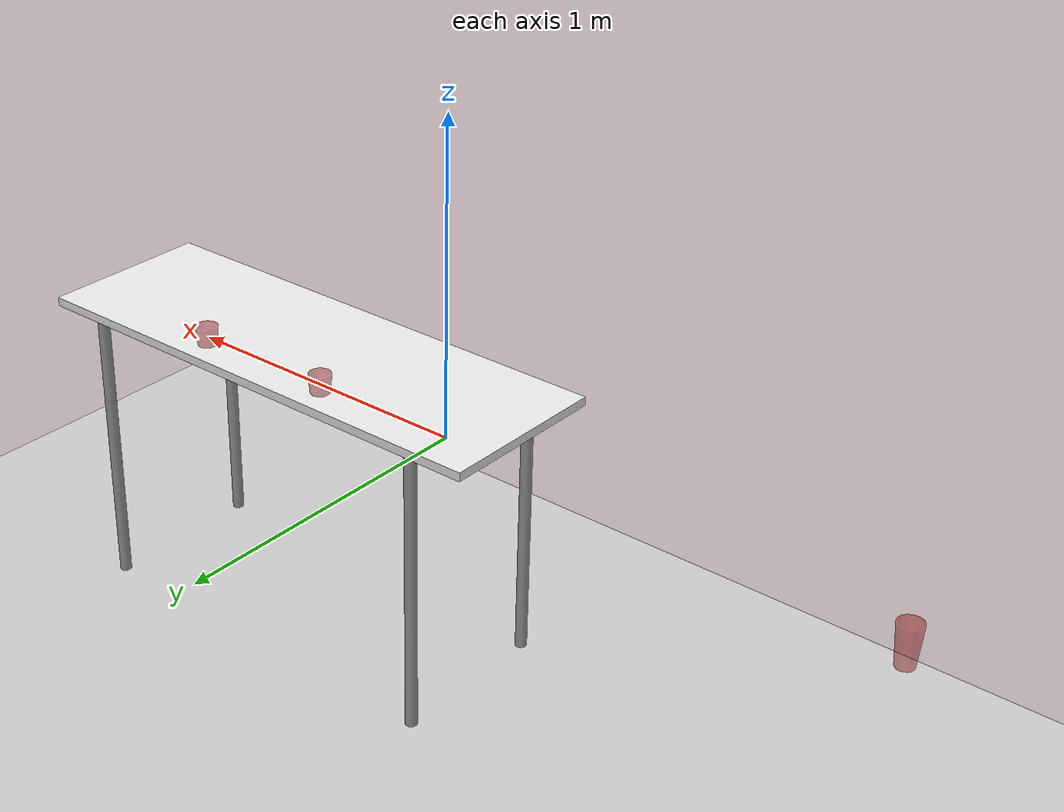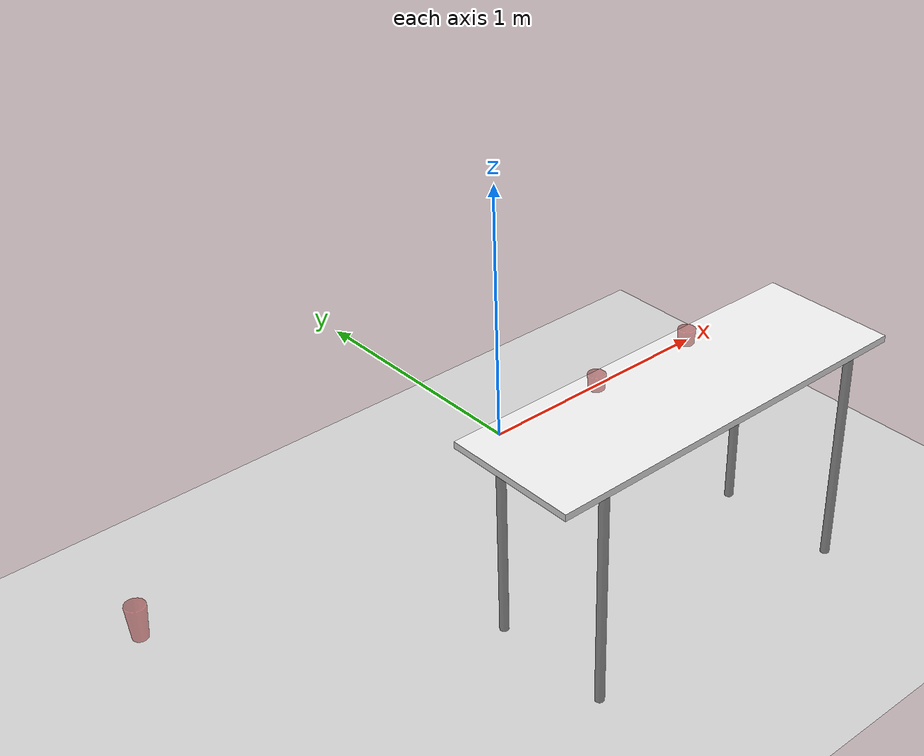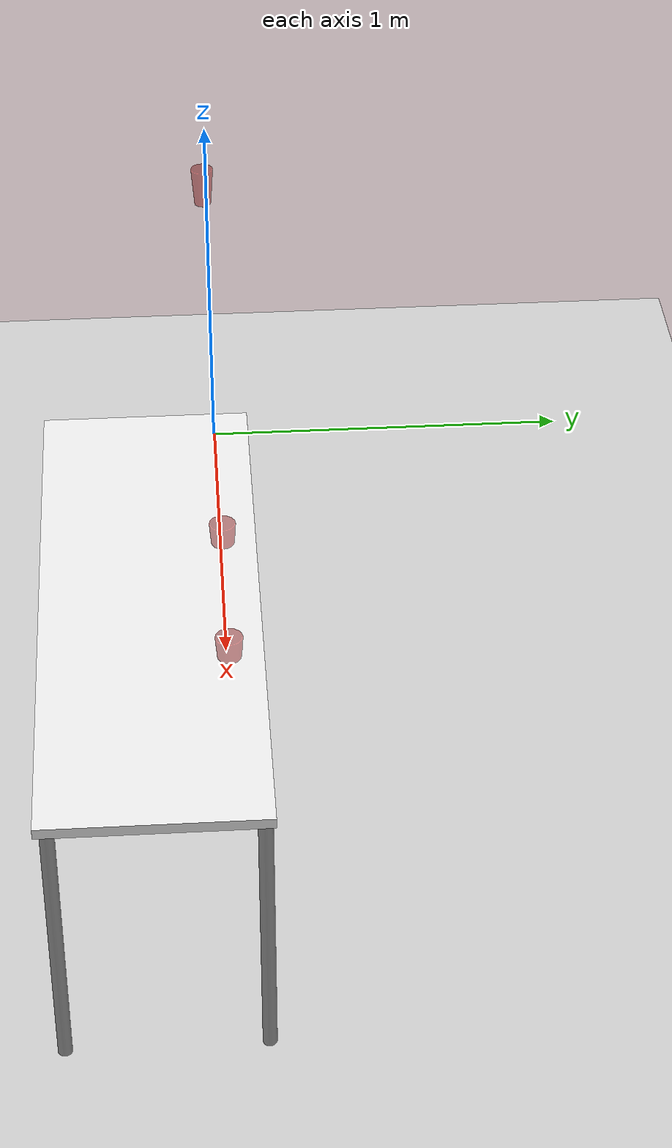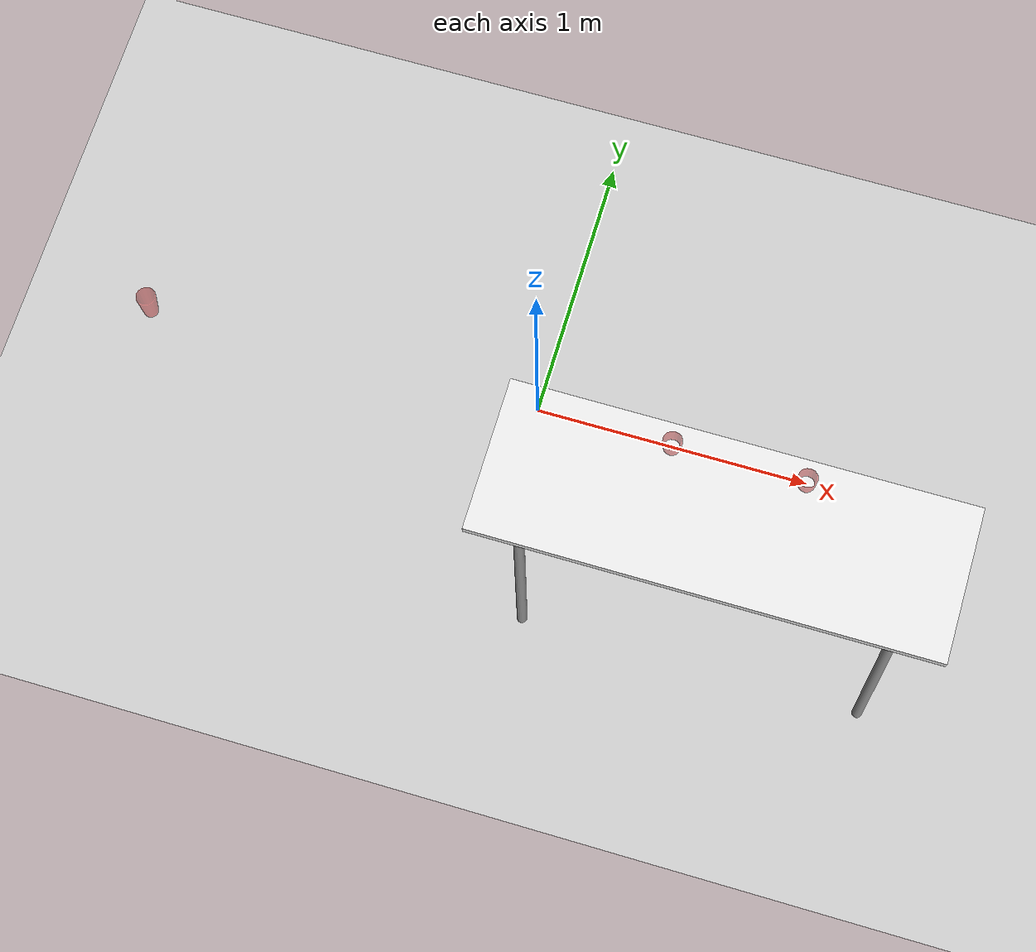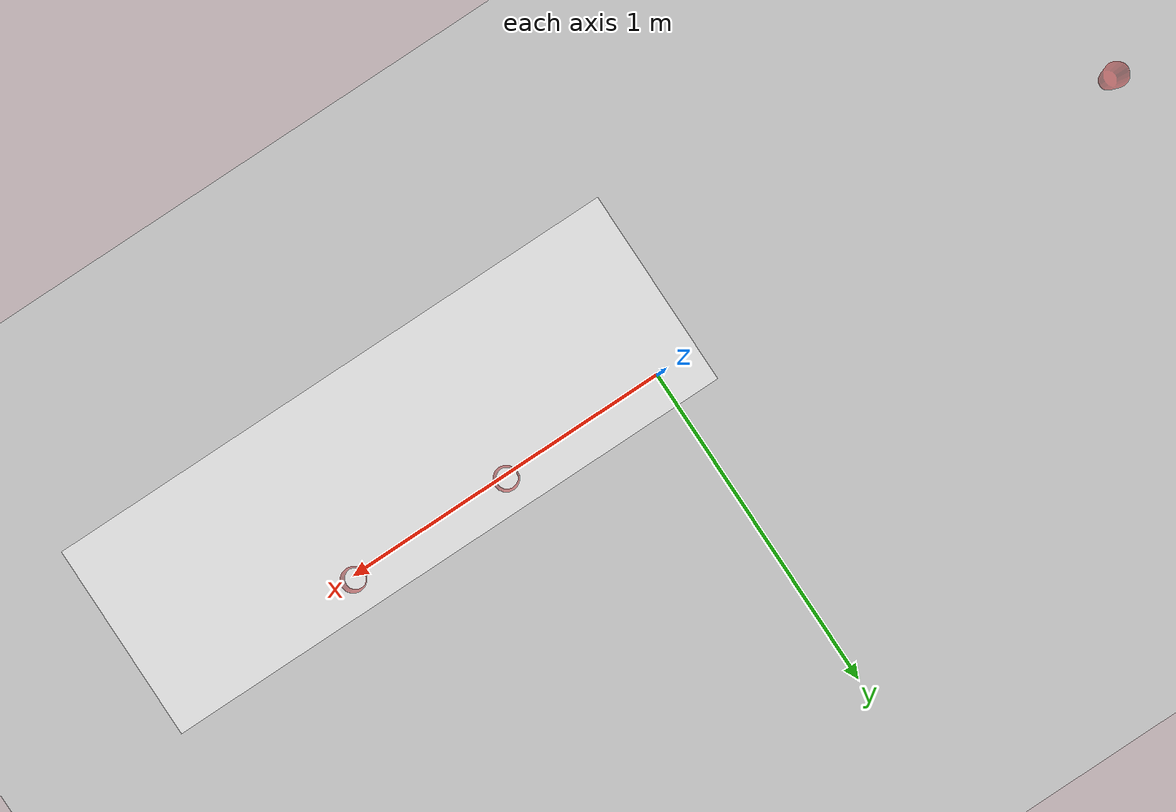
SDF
<?xml version="1.0" ?>
<sdf version="1.4">

  <world name="default">
    <include>
      <uri>model://ground_plane</uri>
      <pose>0 0 -1.035 0 0 0</pose>
    </include>

    <include>
      <uri>model://fable</uri>
      <pose>.75 -0.2 -1.035 0 0 0</pose>
      <static>true</static>
    </include>

    <model name="cup1">
        <include>
          <static>false</static>
          <uri>model://solo_cup</uri>
          <pose>0.5 0 -0.007 0 0 0</pose>
        </include>
    </model>
    <model name="cup2">
        <include>
          <static>false</static>
          <uri>model://solo_cup</uri>
          <pose>1 0 -0.007 0 0 0</pose>
        </include>
    </model>
    <model name="cup3">
        <include>
          <static>false</static>
          <uri>model://solo_cup</uri>
          <pose>-1.5 0 -0.007 0 0 0</pose>
        </include>
    </model>

    <!-- Global light source -->
    <include>
      <uri>model://sun</uri>
    </include>

    <!-- Focus camera on tall pendulum -->
    <gui fullscreen='0'>
      <camera name='user_camera'>
        <pose>2.927360 -2.376610 1.740080 0.000000 0.375643 2.356190</pose>
        <view_controller>orbit</view_controller>
      </camera>
    </gui>

    <plugin name="physics_plugin" filename="libgazebo_physics_plugin.so"/>

  </world>
</sdf>

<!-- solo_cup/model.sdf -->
<sdf version="1.5">
  <model name="solo_cup">
    <link name="link">
      <pose>0 0 -.00542 0 0 0</pose>
      <inertial>
        <mass>0.0599</mass>
        <inertia>
          <ixx>0.0003028961527030333</ixx>
          <ixy>0</ixy>
          <ixz>0</ixz>
          <iyy>0.0003028961527030333</iyy>
          <iyz>0</iyz>
          <izz>3.2876352372798436e-05</izz>
        </inertia>
      </inertial>

      <collision name="collision">
        <geometry>
          <mesh>
            <uri>model://solo_cup/meshes/solo_cup.dae</uri>
          </mesh>
        </geometry>
        <surface>
          <contact>
            <!-- typical acrylic plastic material properties -->
            <poissons_ratio>0.35</poissons_ratio>
            <elastic_modulus>3.102640776e+09</elastic_modulus>
            <ode>
              <kp>100000</kp>
              <kd>100</kd>
              <max_vel>100.0</max_vel>
              <min_depth>0.001</min_depth>
            </ode>
          </contact>
          <friction>
            <torsional>
              <coefficient>1.0</coefficient>
              <use_patch_radius>0</use_patch_radius>
              <surface_radius>0.01</surface_radius>
            </torsional>
          </friction>
        </surface>
      </collision>

      <visual name="visual">
        <geometry>
          <mesh>
            <uri>model://solo_cup/meshes/solo_cup.dae</uri>
          </mesh>
        </geometry>
        <material>
          <script>
            <uri>file://media/materials/scripts/gazebo.material</uri>
            <name>Gazebo/RedTransparent</name>
          </script>
        </material>
      </visual>

    </link>
  </model>
</sdf>

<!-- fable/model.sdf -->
<sdf version="1.5">
  <model name="fable">
    <static>true</static>
    <link name="link">
      <collision name="surface">
        <pose>0 0 1.0 0 0 0</pose>
        <geometry>
          <box>
            <size>1.77 0.6 0.03</size>
          </box>
        </geometry>
        <surface>
          <friction>
            <ode>
              <mu>0.6</mu>
              <mu2>0.6</mu2>
            </ode>
          </friction>
        </surface>
      </collision>
      <visual name="visual1">
        <pose>0 0 1.0 0 0 0</pose>
        <geometry>
          <box>
            <size>1.77 0.6 0.03</size>
          </box>
        </geometry>
        <material>
          <script>
            <uri>file://media/materials/scripts/gazebo.material</uri>
            <name>Gazebo/White</name>
          </script>
        </material>
      </visual>
      <collision name="front_left_leg">
        <pose>0.58 0.28 0.5 0 0 0</pose>
        <geometry>
          <cylinder>
            <radius>0.02</radius>
            <length>1.0</length>
          </cylinder>
        </geometry>
      </collision>
      <visual name="front_left_leg">
        <pose>0.68 0.28 0.5 0 0 0</pose>
        <geometry>
          <cylinder>
            <radius>0.02</radius>
            <length>1.0</length>
          </cylinder>
        </geometry>
        <material>
          <script>
            <uri>file://media/materials/scripts/gazebo.material</uri>
            <name>Gazebo/Grey</name>
          </script>
        </material>
      </visual>
      <collision name="front_right_leg">
        <pose>0.68 -0.28 0.5 0 0 0</pose>
        <geometry>
          <cylinder>
            <radius>0.02</radius>
            <length>1.0</length>
          </cylinder>
        </geometry>
      </collision>
      <visual name="front_right_leg">
        <pose>0.68 -0.28 0.5 0 0 0</pose>
        <geometry>
          <cylinder>
            <radius>0.02</radius>
            <length>1.0</length>
          </cylinder>
        </geometry>
        <material>
          <script>
            <uri>file://media/materials/scripts/gazebo.material</uri>
            <name>Gazebo/Grey</name>
          </script>
        </material>
      </visual>
      <collision name="back_right_leg">
        <pose>-0.68 -0.28 0.5 0 0 0</pose>
        <geometry>
          <cylinder>
            <radius>0.02</radius>
            <length>1.0</length>
          </cylinder>
        </geometry>
      </collision>
      <visual name="back_right_leg">
        <pose>-0.68 -0.28 0.5 0 0 0</pose>
        <geometry>
          <cylinder>
            <radius>0.02</radius>
            <length>1.0</length>
          </cylinder>
        </geometry>
        <material>
          <script>
            <uri>file://media/materials/scripts/gazebo.material</uri>
            <name>Gazebo/Grey</name>
          </script>
        </material>
      </visual>
      <collision name="back_left_leg">
        <pose>-0.68 0.28 0.5 0 0 0</pose>
        <geometry>
          <cylinder>
            <radius>0.02</radius>
            <length>1.0</length>
          </cylinder>
        </geometry>
      </collision>
      <visual name="back_left_leg">
        <pose>-0.68 0.28 0.5 0 0 0</pose>
        <geometry>
          <cylinder>
            <radius>0.02</radius>
            <length>1.0</length>
          </cylinder>
        </geometry>
        <material>
          <script>
            <uri>file://media/materials/scripts/gazebo.material</uri>
            <name>Gazebo/Grey</name>
          </script>
        </material>
      </visual>
    </link>
  </model>
</sdf>
